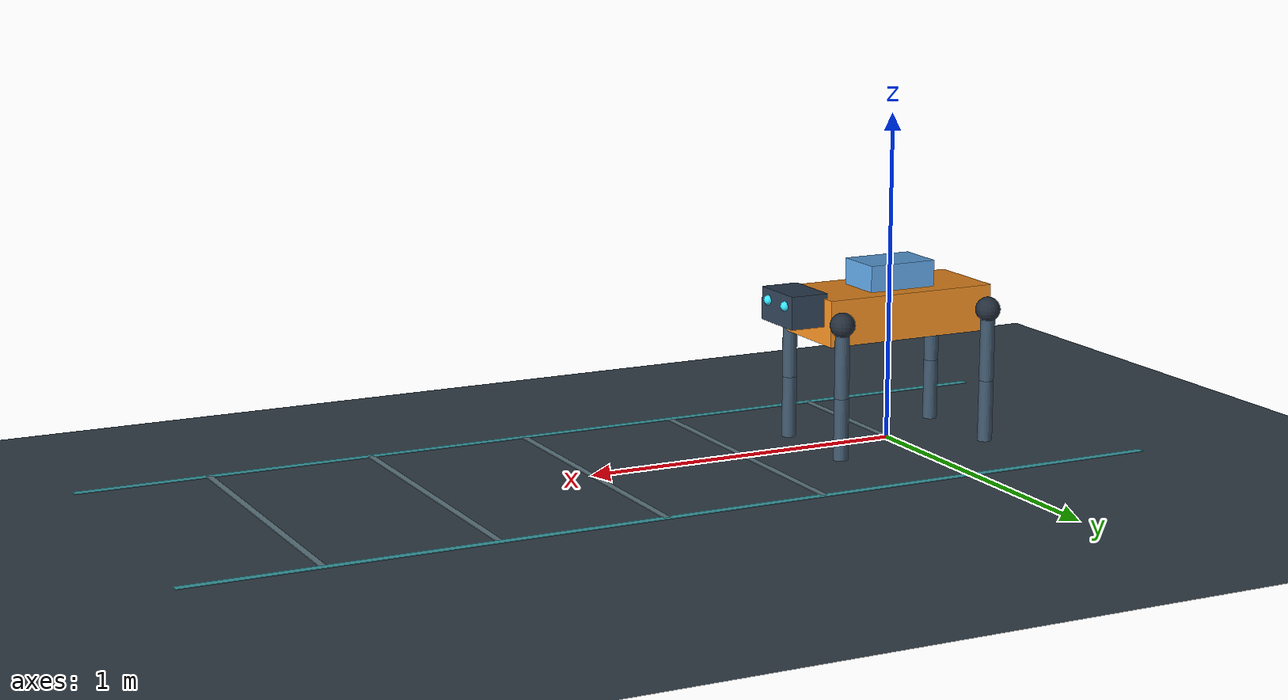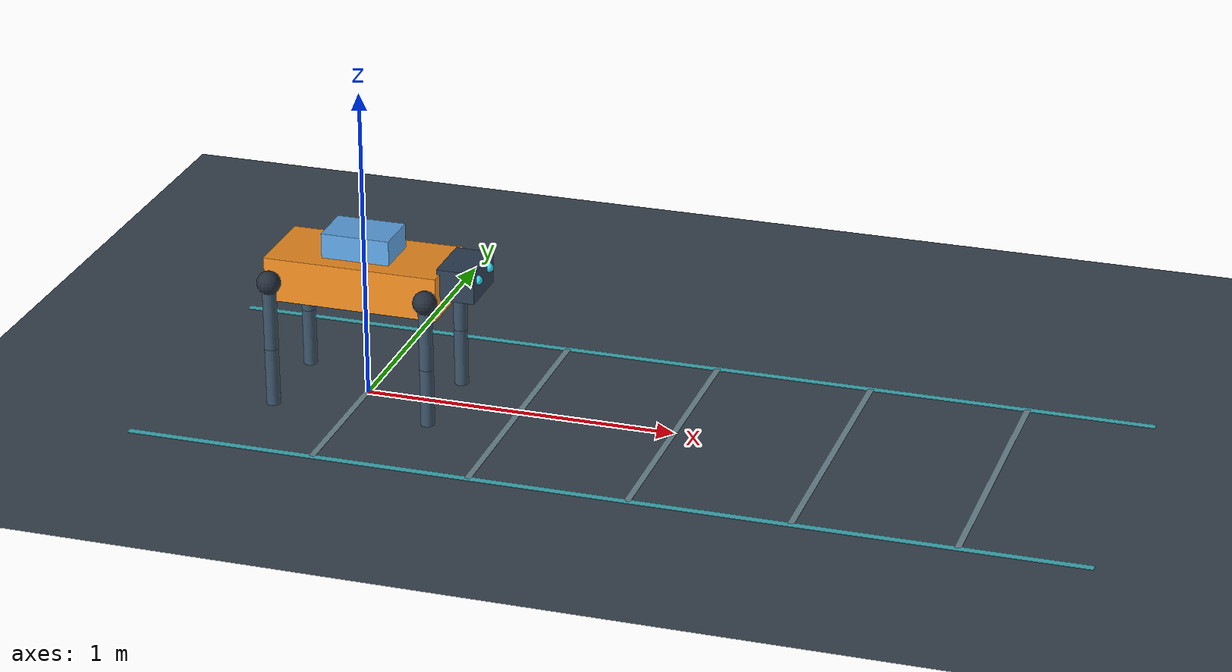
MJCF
<mujoco model="RealityPatch gait coordination task">
  <!-- Reuse the identical articulated mechanics. All added floor marks are
       presentation-only, with no collision or dynamic bodies. -->
  <include file="quadruped.xml"/>
  <worldbody>
    <camera name="gait_side" pos="0.40 -3.2 1.05" xyaxes="1 0 0 0 0.251 0.968" fovy="34"/>
    <camera name="gait_overview" pos="1.50 -2.50 1.60" xyaxes="0.882 0.471 0 -0.220 0.412 0.884" fovy="38"/>
    <geom name="walking_strip_left" type="box" pos="0.9 0.48 0.002" size="1.5 0.012 0.001" contype="0" conaffinity="0" rgba="0.25 0.69 0.73 1"/>
    <geom name="walking_strip_right" type="box" pos="0.9 -0.48 0.002" size="1.5 0.012 0.001" contype="0" conaffinity="0" rgba="0.25 0.69 0.73 1"/>
    <geom name="distance_tick_start" type="box" pos="0 0 0.002" size="0.01 0.48 0.001" contype="0" conaffinity="0" rgba="0.43 0.54 0.58 1"/>
    <geom name="distance_tick_half" type="box" pos="0.5 0 0.002" size="0.01 0.48 0.001" contype="0" conaffinity="0" rgba="0.43 0.54 0.58 1"/>
    <geom name="distance_tick_one" type="box" pos="1 0 0.002" size="0.01 0.48 0.001" contype="0" conaffinity="0" rgba="0.43 0.54 0.58 1"/>
    <geom name="distance_tick_one_half" type="box" pos="1.5 0 0.002" size="0.01 0.48 0.001" contype="0" conaffinity="0" rgba="0.43 0.54 0.58 1"/>
    <geom name="distance_tick_two" type="box" pos="2 0 0.002" size="0.01 0.48 0.001" contype="0" conaffinity="0" rgba="0.43 0.54 0.58 1"/>
  </worldbody>
</mujoco>

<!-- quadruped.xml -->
<mujoco model="RealityPatch articulated quadruped">
  <compiler angle="radian" autolimits="true"/>
  <option timestep="0.002" integrator="implicitfast" solver="Newton" iterations="50" cone="elliptic"/>
  <size nconmax="100" njmax="500"/>
  <visual><global offwidth="1280" offheight="720"/><quality shadowsize="2048"/><headlight diffuse="0.7 0.7 0.7" ambient="0.45 0.45 0.45"/></visual>
  <statistic center="0.9 0 0.3" extent="2.5"/>
  <default>
    <joint damping="0.15" armature="0.015" limited="true"/>
    <geom friction="0.9 0.01 0.001" condim="3" solref="0.01 1" solimp="0.9 0.95 0.001"/>
    <motor ctrllimited="true" ctrlrange="-35 35"/>
    <default class="limb"><geom type="capsule" size="0.022" rgba="0.23 0.32 0.4 1"/></default>
  </default>
  <asset>
    <texture name="sky" type="skybox" builtin="gradient" rgb1="0.18 0.27 0.39" rgb2="0.55 0.66 0.74" width="512" height="3072"/>
    <texture name="floor" type="2d" builtin="checker" rgb1="0.20 0.25 0.30" rgb2="0.25 0.30 0.34" width="512" height="512"/>
    <material name="floor_mat" texture="floor" texrepeat="12 12" reflectance="0.05"/>
  </asset>
  <worldbody>
    <light pos="-1 -3 5" dir="0.2 0.4 -1" castshadow="true"/>
    <geom name="floor" type="plane" size="15 15 0.1" material="floor_mat" friction="0.85 0.01 0.001"/>
    <camera name="overview" pos="2.5 -3.2 2" xyaxes="0.788 0.615 0 -0.275 0.353 0.895"/>
    <camera name="side" pos="0 -3.5 0.9" xyaxes="1 0 0 0 0.2 0.98"/>
    <body name="torso" pos="0 0 0.405">
      <freejoint name="root"/>
      <geom name="torso_shell" type="box" size="0.28 0.13 0.07" mass="6" rgba="0.95 0.56 0.13 1"/>
      <geom name="head" type="box" pos="0.33 0 0.035" size="0.06 0.09 0.05" mass="0.15" rgba="0.18 0.25 0.33 1"/>
      <geom name="eye_left" type="sphere" pos="0.39 0.05 0.05" size="0.015" mass="0.001" contype="0" conaffinity="0" rgba="0.2 0.9 1 1"/>
      <geom name="eye_right" type="sphere" pos="0.39 -0.05 0.05" size="0.015" mass="0.001" contype="0" conaffinity="0" rgba="0.2 0.9 1 1"/>
      <site name="imu" size="0.008"/>
      <camera name="chase" mode="trackcom" pos="-1.6 -1.7 1.05" xyaxes="0.728 -0.685 0 0.27 0.288 0.919"/>
      <body name="payload" pos="0 0 0.105">
        <joint name="payload_slide" type="slide" axis="0 1 0" range="-0.32 0.32" damping="8" armature="0.001" stiffness="1000" springref="0"/>
        <geom name="payload_box" type="box" size="0.11 0.075 0.045" mass="1.2" rgba="0.37 0.65 0.9 1" contype="0" conaffinity="0"/>
      </body>
      <body name="FL_hip" pos="0.255 0.155 0">
        <joint name="FL_abduction" axis="1 0 0" range="-0.8 0.8"/>
        <geom type="sphere" size="0.038" mass="0.10" rgba="0.14 0.18 0.23 1" contype="0" conaffinity="0"/>
        <body name="FL_upper">
          <joint name="FL_hip_pitch" axis="0 1 0" range="-1.3 1.5"/>
          <geom class="limb" name="FL_thigh" fromto="0 0 0 0 0 -0.22" mass="0.28"/>
          <body name="FL_lower" pos="0 0 -0.22">
            <joint name="FL_knee" axis="0 1 0" range="-2.7 -0.15"/>
            <geom class="limb" name="FL_shin" fromto="0 0 0 0 0 -0.22" mass="0.18"/>
            <geom name="FL_foot" type="sphere" pos="0 0 -0.22" size="0.034" mass="0.06" priority="1" friction="0.9 0.01 0.001" rgba="0.07 0.08 0.1 1"/>
            <site name="FL_toe" pos="0 0 -0.22" size="0.009" rgba="0.4 1 0.4 1"/>
          </body>
        </body>
      </body>
      <body name="FR_hip" pos="0.255 -0.155 0">
        <joint name="FR_abduction" axis="1 0 0" range="-0.8 0.8"/>
        <geom type="sphere" size="0.038" mass="0.10" rgba="0.14 0.18 0.23 1" contype="0" conaffinity="0"/>
        <body name="FR_upper">
          <joint name="FR_hip_pitch" axis="0 1 0" range="-1.3 1.5"/>
          <geom class="limb" name="FR_thigh" fromto="0 0 0 0 0 -0.22" mass="0.28"/>
          <body name="FR_lower" pos="0 0 -0.22">
            <joint name="FR_knee" axis="0 1 0" range="-2.7 -0.15"/>
            <geom class="limb" name="FR_shin" fromto="0 0 0 0 0 -0.22" mass="0.18"/>
            <geom name="FR_foot" type="sphere" pos="0 0 -0.22" size="0.034" mass="0.06" priority="1" friction="0.9 0.01 0.001" rgba="0.07 0.08 0.1 1"/>
            <site name="FR_toe" pos="0 0 -0.22" size="0.009" rgba="0.4 1 0.4 1"/>
          </body>
        </body>
      </body>
      <body name="RL_hip" pos="-0.255 0.155 0">
        <joint name="RL_abduction" axis="1 0 0" range="-0.8 0.8"/>
        <geom type="sphere" size="0.038" mass="0.10" rgba="0.14 0.18 0.23 1" contype="0" conaffinity="0"/>
        <body name="RL_upper">
          <joint name="RL_hip_pitch" axis="0 1 0" range="-1.3 1.5"/>
          <geom class="limb" name="RL_thigh" fromto="0 0 0 0 0 -0.22" mass="0.28"/>
          <body name="RL_lower" pos="0 0 -0.22">
            <joint name="RL_knee" axis="0 1 0" range="-2.7 -0.15"/>
            <geom class="limb" name="RL_shin" fromto="0 0 0 0 0 -0.22" mass="0.18"/>
            <geom name="RL_foot" type="sphere" pos="0 0 -0.22" size="0.034" mass="0.06" priority="1" friction="0.9 0.01 0.001" rgba="0.07 0.08 0.1 1"/>
            <site name="RL_toe" pos="0 0 -0.22" size="0.009" rgba="0.4 1 0.4 1"/>
          </body>
        </body>
      </body>
      <body name="RR_hip" pos="-0.255 -0.155 0">
        <joint name="RR_abduction" axis="1 0 0" range="-0.8 0.8"/>
        <geom type="sphere" size="0.038" mass="0.10" rgba="0.14 0.18 0.23 1" contype="0" conaffinity="0"/>
        <body name="RR_upper">
          <joint name="RR_hip_pitch" axis="0 1 0" range="-1.3 1.5"/>
          <geom class="limb" name="RR_thigh" fromto="0 0 0 0 0 -0.22" mass="0.28"/>
          <body name="RR_lower" pos="0 0 -0.22">
            <joint name="RR_knee" axis="0 1 0" range="-2.7 -0.15"/>
            <geom class="limb" name="RR_shin" fromto="0 0 0 0 0 -0.22" mass="0.18"/>
            <geom name="RR_foot" type="sphere" pos="0 0 -0.22" size="0.034" mass="0.06" priority="1" friction="0.9 0.01 0.001" rgba="0.07 0.08 0.1 1"/>
            <site name="RR_toe" pos="0 0 -0.22" size="0.009" rgba="0.4 1 0.4 1"/>
          </body>
        </body>
      </body>
    </body>
  </worldbody>
  <contact>
    <exclude body1="torso" body2="FL_upper"/>
    <exclude body1="torso" body2="FR_upper"/>
    <exclude body1="torso" body2="RL_upper"/>
    <exclude body1="torso" body2="RR_upper"/>
  </contact>
  <actuator>
    <motor name="FL_abduction_motor" joint="FL_abduction"/>
    <motor name="FL_hip_pitch_motor" joint="FL_hip_pitch"/>
    <motor name="FL_knee_motor" joint="FL_knee"/>
    <motor name="FR_abduction_motor" joint="FR_abduction"/>
    <motor name="FR_hip_pitch_motor" joint="FR_hip_pitch"/>
    <motor name="FR_knee_motor" joint="FR_knee"/>
    <motor name="RL_abduction_motor" joint="RL_abduction"/>
    <motor name="RL_hip_pitch_motor" joint="RL_hip_pitch"/>
    <motor name="RL_knee_motor" joint="RL_knee"/>
    <motor name="RR_abduction_motor" joint="RR_abduction"/>
    <motor name="RR_hip_pitch_motor" joint="RR_hip_pitch"/>
    <motor name="RR_knee_motor" joint="RR_knee"/>
  </actuator>
  <sensor>
    <accelerometer name="accelerometer" site="imu"/>
    <gyro name="gyroscope" site="imu"/>
  </sensor>
</mujoco>
